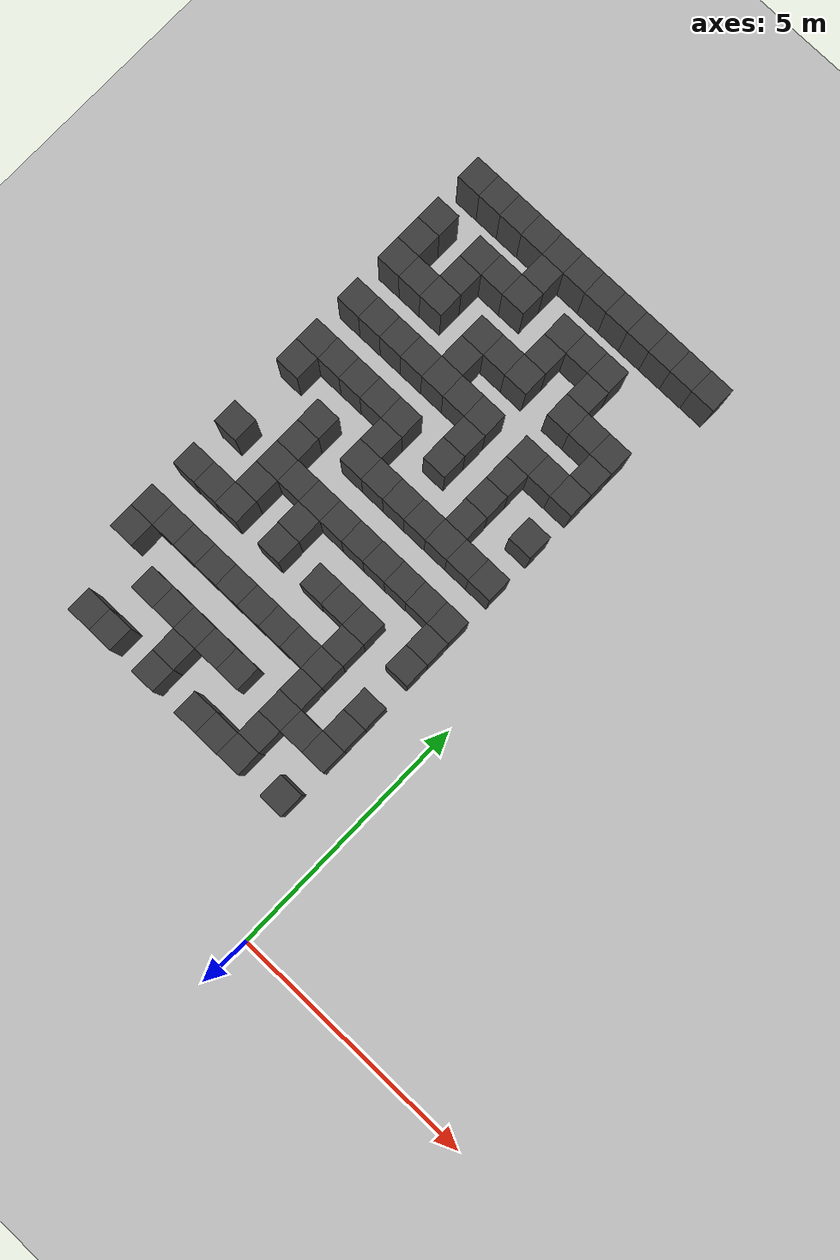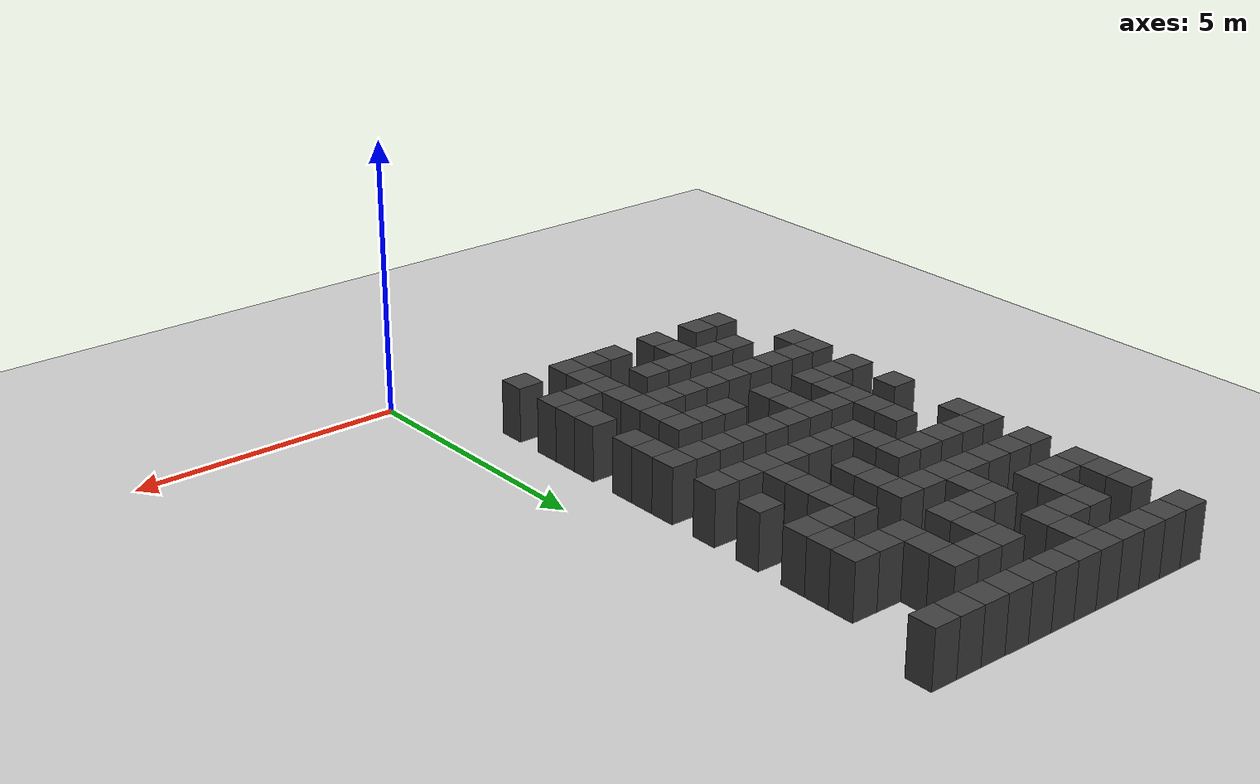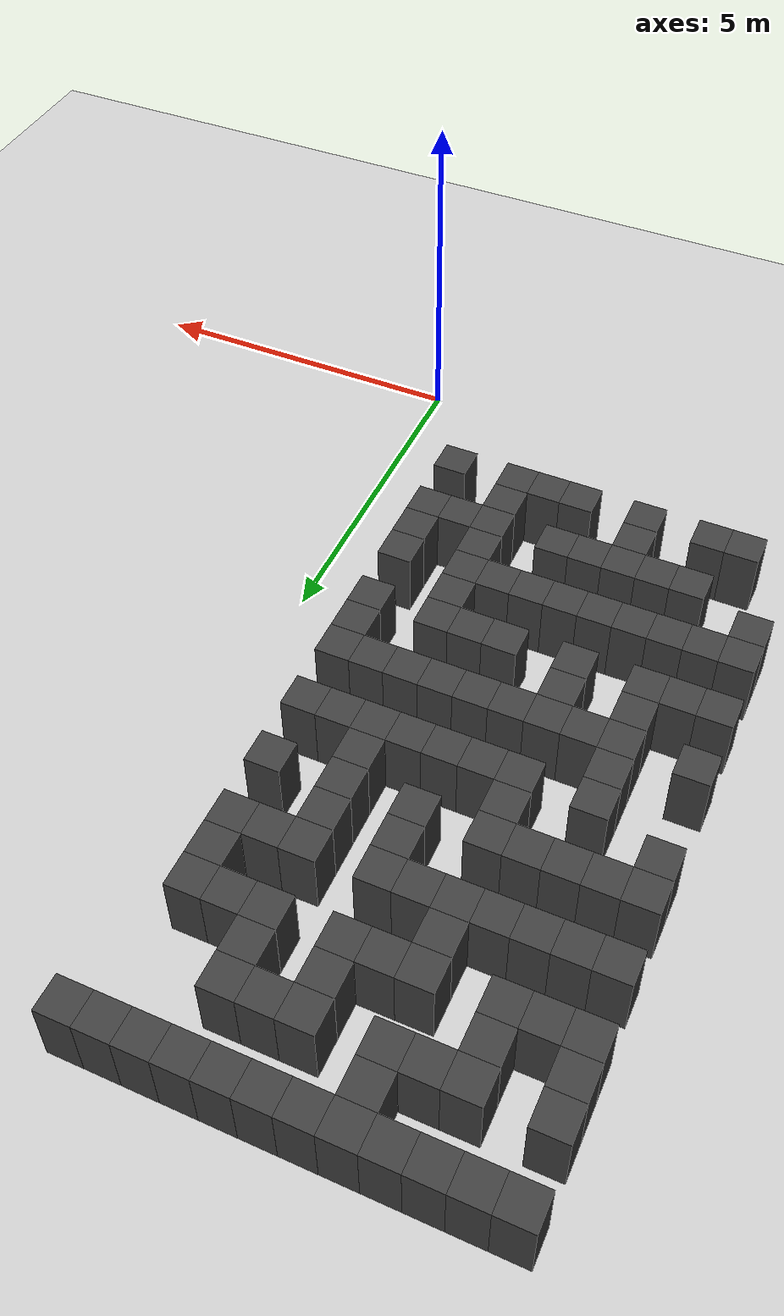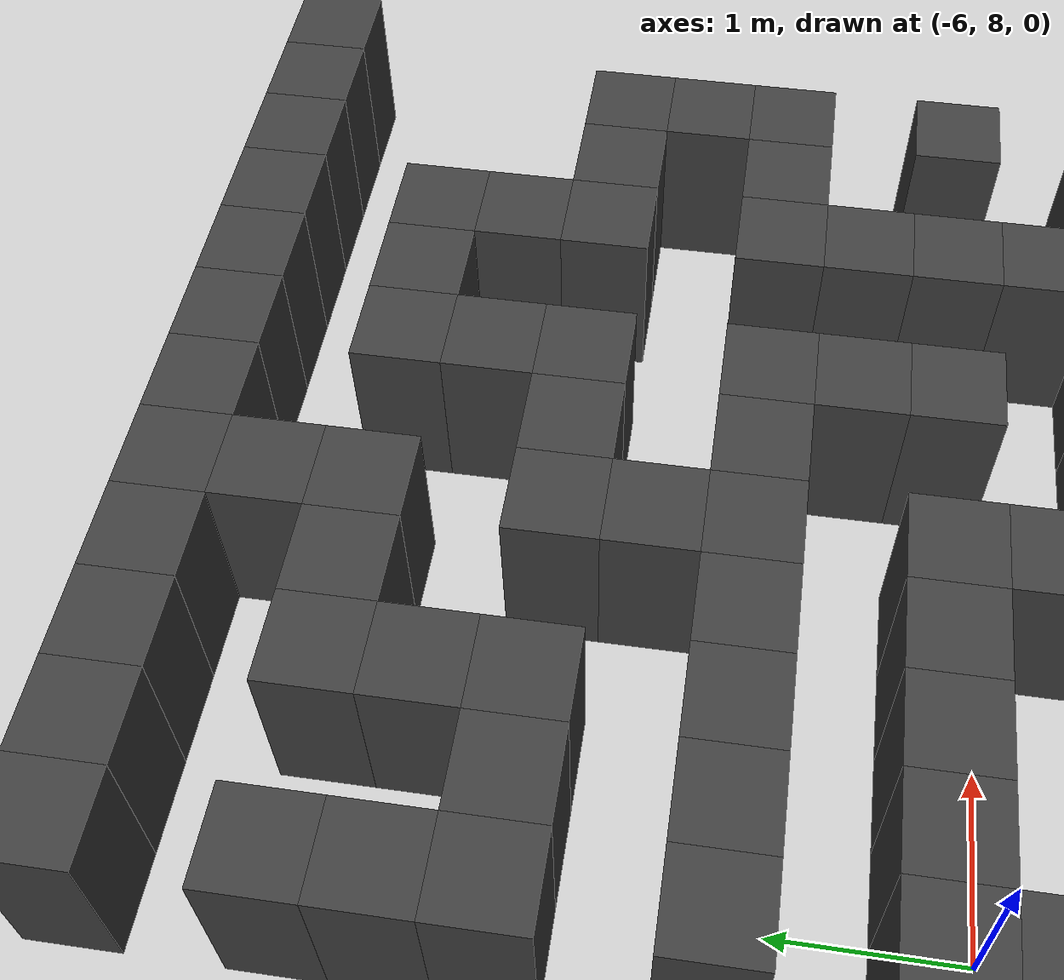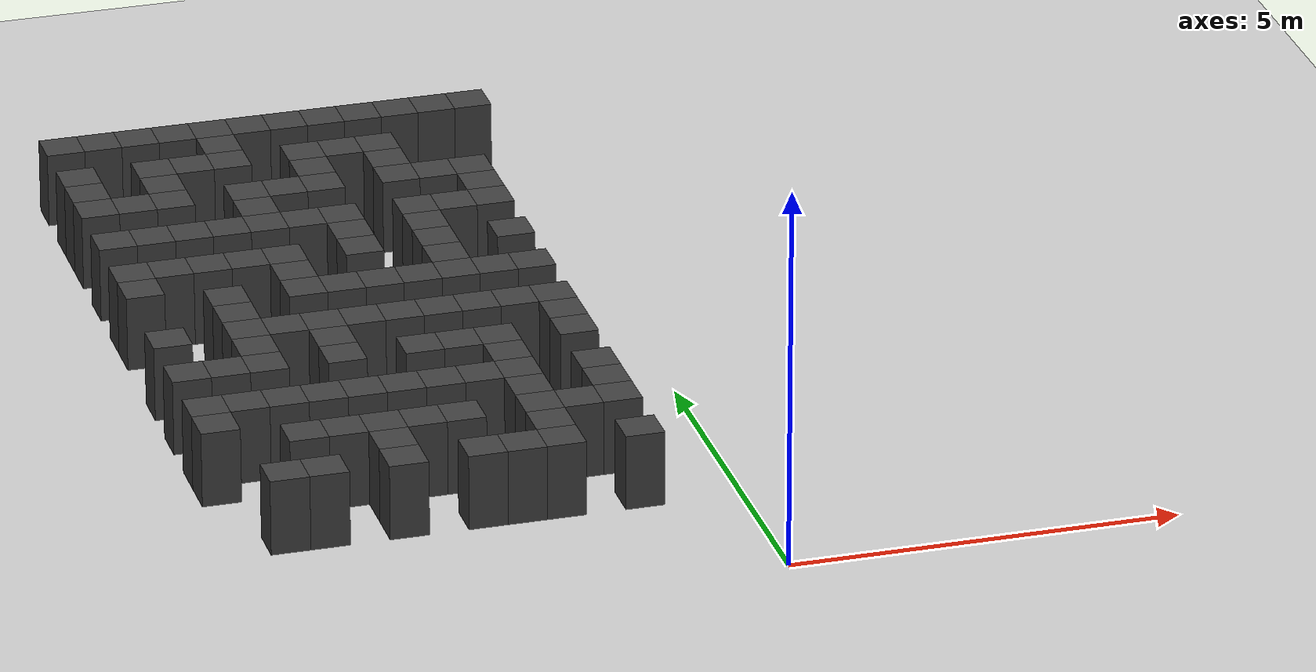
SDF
<sdf version="1.7">
 <world name="map_18814">
  <model name="ground_plane">
   <static>true</static>
   <link name="link">
    <collision name="collision">
     <geometry><plane><normal>0 0 1</normal><size>200 200</size></plane></geometry>
    </collision>
    <visual name="visual">
     <geometry><plane><normal>0 0 1</normal><size>200 200</size></plane></geometry>
     <material><ambient>0.8 0.8 0.8 1</ambient><diffuse>0.8 0.8 0.8 1</diffuse></material>
    </visual>
   </link>
  </model>
  <model name="maze_environment">
   <static>true</static>
   <link name="wall_12">
    <pose>-6.250 12.250 0.500 0 0 0</pose>
    <collision name="col"><geometry><box><size>0.5 0.5 1.0</size></box></geometry></collision>
    <visual name="vis">
     <geometry><box><size>0.5 0.5 1.0</size></box></geometry>
     <material><ambient>0.15 0.15 0.15 1</ambient><diffuse>0.25 0.25 0.25 1</diffuse></material>
    </visual>
   </link>
   <link name="wall_13">
    <pose>-5.750 12.250 0.500 0 0 0</pose>
    <collision name="col"><geometry><box><size>0.5 0.5 1.0</size></box></geometry></collision>
    <visual name="vis">
     <geometry><box><size>0.5 0.5 1.0</size></box></geometry>
     <material><ambient>0.15 0.15 0.15 1</ambient><diffuse>0.25 0.25 0.25 1</diffuse></material>
    </visual>
   </link>
   <link name="wall_14">
    <pose>-5.250 12.250 0.500 0 0 0</pose>
    <collision name="col"><geometry><box><size>0.5 0.5 1.0</size></box></geometry></collision>
    <visual name="vis">
     <geometry><box><size>0.5 0.5 1.0</size></box></geometry>
     <material><ambient>0.15 0.15 0.15 1</ambient><diffuse>0.25 0.25 0.25 1</diffuse></material>
    </visual>
   </link>
   <link name="wall_15">
    <pose>-4.750 12.250 0.500 0 0 0</pose>
    <collision name="col"><geometry><box><size>0.5 0.5 1.0</size></box></geometry></collision>
    <visual name="vis">
     <geometry><box><size>0.5 0.5 1.0</size></box></geometry>
     <material><ambient>0.15 0.15 0.15 1</ambient><diffuse>0.25 0.25 0.25 1</diffuse></material>
    </visual>
   </link>
   <link name="wall_16">
    <pose>-4.250 12.250 0.500 0 0 0</pose>
    <collision name="col"><geometry><box><size>0.5 0.5 1.0</size></box></geometry></collision>
    <visual name="vis">
     <geometry><box><size>0.5 0.5 1.0</size></box></geometry>
     <material><ambient>0.15 0.15 0.15 1</ambient><diffuse>0.25 0.25 0.25 1</diffuse></material>
    </visual>
   </link>
   <link name="wall_17">
    <pose>-3.750 12.250 0.500 0 0 0</pose>
    <collision name="col"><geometry><box><size>0.5 0.5 1.0</size></box></geometry></collision>
    <visual name="vis">
     <geometry><box><size>0.5 0.5 1.0</size></box></geometry>
     <material><ambient>0.15 0.15 0.15 1</ambient><diffuse>0.25 0.25 0.25 1</diffuse></material>
    </visual>
   </link>
   <link name="wall_18">
    <pose>-3.250 12.250 0.500 0 0 0</pose>
    <collision name="col"><geometry><box><size>0.5 0.5 1.0</size></box></geometry></collision>
    <visual name="vis">
     <geometry><box><size>0.5 0.5 1.0</size></box></geometry>
     <material><ambient>0.15 0.15 0.15 1</ambient><diffuse>0.25 0.25 0.25 1</diffuse></material>
    </visual>
   </link>
   <link name="wall_19">
    <pose>-2.750 12.250 0.500 0 0 0</pose>
    <collision name="col"><geometry><box><size>0.5 0.5 1.0</size></box></geometry></collision>
    <visual name="vis">
     <geometry><box><size>0.5 0.5 1.0</size></box></geometry>
     <material><ambient>0.15 0.15 0.15 1</ambient><diffuse>0.25 0.25 0.25 1</diffuse></material>
    </visual>
   </link>
   <link name="wall_20">
    <pose>-2.250 12.250 0.500 0 0 0</pose>
    <collision name="col"><geometry><box><size>0.5 0.5 1.0</size></box></geometry></collision>
    <visual name="vis">
     <geometry><box><size>0.5 0.5 1.0</size></box></geometry>
     <material><ambient>0.15 0.15 0.15 1</ambient><diffuse>0.25 0.25 0.25 1</diffuse></material>
    </visual>
   </link>
   <link name="wall_21">
    <pose>-1.750 12.250 0.500 0 0 0</pose>
    <collision name="col"><geometry><box><size>0.5 0.5 1.0</size></box></geometry></collision>
    <visual name="vis">
     <geometry><box><size>0.5 0.5 1.0</size></box></geometry>
     <material><ambient>0.15 0.15 0.15 1</ambient><diffuse>0.25 0.25 0.25 1</diffuse></material>
    </visual>
   </link>
   <link name="wall_22">
    <pose>-1.250 12.250 0.500 0 0 0</pose>
    <collision name="col"><geometry><box><size>0.5 0.5 1.0</size></box></geometry></collision>
    <visual name="vis">
     <geometry><box><size>0.5 0.5 1.0</size></box></geometry>
     <material><ambient>0.15 0.15 0.15 1</ambient><diffuse>0.25 0.25 0.25 1</diffuse></material>
    </visual>
   </link>
   <link name="wall_23">
    <pose>-0.750 12.250 0.500 0 0 0</pose>
    <collision name="col"><geometry><box><size>0.5 0.5 1.0</size></box></geometry></collision>
    <visual name="vis">
     <geometry><box><size>0.5 0.5 1.0</size></box></geometry>
     <material><ambient>0.15 0.15 0.15 1</ambient><diffuse>0.25 0.25 0.25 1</diffuse></material>
    </visual>
   </link>
   <link name="wall_53">
    <pose>-4.250 11.750 0.500 0 0 0</pose>
    <collision name="col"><geometry><box><size>0.5 0.5 1.0</size></box></geometry></collision>
    <visual name="vis">
     <geometry><box><size>0.5 0.5 1.0</size></box></geometry>
     <material><ambient>0.15 0.15 0.15 1</ambient><diffuse>0.25 0.25 0.25 1</diffuse></material>
    </visual>
   </link>
   <link name="wall_65">
    <pose>-6.250 11.250 0.500 0 0 0</pose>
    <collision name="col"><geometry><box><size>0.5 0.5 1.0</size></box></geometry></collision>
    <visual name="vis">
     <geometry><box><size>0.5 0.5 1.0</size></box></geometry>
     <material><ambient>0.15 0.15 0.15 1</ambient><diffuse>0.25 0.25 0.25 1</diffuse></material>
    </visual>
   </link>
   <link name="wall_66">
    <pose>-5.250 11.250 0.500 0 0 0</pose>
    <collision name="col"><geometry><box><size>0.5 0.5 1.0</size></box></geometry></collision>
    <visual name="vis">
     <geometry><box><size>0.5 0.5 1.0</size></box></geometry>
     <material><ambient>0.15 0.15 0.15 1</ambient><diffuse>0.25 0.25 0.25 1</diffuse></material>
    </visual>
   </link>
   <link name="wall_67">
    <pose>-4.750 11.250 0.500 0 0 0</pose>
    <collision name="col"><geometry><box><size>0.5 0.5 1.0</size></box></geometry></collision>
    <visual name="vis">
     <geometry><box><size>0.5 0.5 1.0</size></box></geometry>
     <material><ambient>0.15 0.15 0.15 1</ambient><diffuse>0.25 0.25 0.25 1</diffuse></material>
    </visual>
   </link>
   <link name="wall_68">
    <pose>-4.250 11.250 0.500 0 0 0</pose>
    <collision name="col"><geometry><box><size>0.5 0.5 1.0</size></box></geometry></collision>
    <visual name="vis">
     <geometry><box><size>0.5 0.5 1.0</size></box></geometry>
     <material><ambient>0.15 0.15 0.15 1</ambient><diffuse>0.25 0.25 0.25 1</diffuse></material>
    </visual>
   </link>
   <link name="wall_69">
    <pose>-3.250 11.250 0.500 0 0 0</pose>
    <collision name="col"><geometry><box><size>0.5 0.5 1.0</size></box></geometry></collision>
    <visual name="vis">
     <geometry><box><size>0.5 0.5 1.0</size></box></geometry>
     <material><ambient>0.15 0.15 0.15 1</ambient><diffuse>0.25 0.25 0.25 1</diffuse></material>
    </visual>
   </link>
   <link name="wall_70">
    <pose>-2.750 11.250 0.500 0 0 0</pose>
    <collision name="col"><geometry><box><size>0.5 0.5 1.0</size></box></geometry></collision>
    <visual name="vis">
     <geometry><box><size>0.5 0.5 1.0</size></box></geometry>
     <material><ambient>0.15 0.15 0.15 1</ambient><diffuse>0.25 0.25 0.25 1</diffuse></material>
    </visual>
   </link>
   <link name="wall_71">
    <pose>-2.250 11.250 0.500 0 0 0</pose>
    <collision name="col"><geometry><box><size>0.5 0.5 1.0</size></box></geometry></collision>
    <visual name="vis">
     <geometry><box><size>0.5 0.5 1.0</size></box></geometry>
     <material><ambient>0.15 0.15 0.15 1</ambient><diffuse>0.25 0.25 0.25 1</diffuse></material>
    </visual>
   </link>
   <link name="wall_98">
    <pose>-6.250 10.750 0.500 0 0 0</pose>
    <collision name="col"><geometry><box><size>0.5 0.5 1.0</size></box></geometry></collision>
    <visual name="vis">
     <geometry><box><size>0.5 0.5 1.0</size></box></geometry>
     <material><ambient>0.15 0.15 0.15 1</ambient><diffuse>0.25 0.25 0.25 1</diffuse></material>
    </visual>
   </link>
   <link name="wall_99">
    <pose>-5.250 10.750 0.500 0 0 0</pose>
    <collision name="col"><geometry><box><size>0.5 0.5 1.0</size></box></geometry></collision>
    <visual name="vis">
     <geometry><box><size>0.5 0.5 1.0</size></box></geometry>
     <material><ambient>0.15 0.15 0.15 1</ambient><diffuse>0.25 0.25 0.25 1</diffuse></material>
    </visual>
   </link>
   <link name="wall_100">
    <pose>-3.250 10.750 0.500 0 0 0</pose>
    <collision name="col"><geometry><box><size>0.5 0.5 1.0</size></box></geometry></collision>
    <visual name="vis">
     <geometry><box><size>0.5 0.5 1.0</size></box></geometry>
     <material><ambient>0.15 0.15 0.15 1</ambient><diffuse>0.25 0.25 0.25 1</diffuse></material>
    </visual>
   </link>
   <link name="wall_101">
    <pose>-2.250 10.750 0.500 0 0 0</pose>
    <collision name="col"><geometry><box><size>0.5 0.5 1.0</size></box></geometry></collision>
    <visual name="vis">
     <geometry><box><size>0.5 0.5 1.0</size></box></geometry>
     <material><ambient>0.15 0.15 0.15 1</ambient><diffuse>0.25 0.25 0.25 1</diffuse></material>
    </visual>
   </link>
   <link name="wall_118">
    <pose>-6.250 10.250 0.500 0 0 0</pose>
    <collision name="col"><geometry><box><size>0.5 0.5 1.0</size></box></geometry></collision>
    <visual name="vis">
     <geometry><box><size>0.5 0.5 1.0</size></box></geometry>
     <material><ambient>0.15 0.15 0.15 1</ambient><diffuse>0.25 0.25 0.25 1</diffuse></material>
    </visual>
   </link>
   <link name="wall_119">
    <pose>-5.750 10.250 0.500 0 0 0</pose>
    <collision name="col"><geometry><box><size>0.5 0.5 1.0</size></box></geometry></collision>
    <visual name="vis">
     <geometry><box><size>0.5 0.5 1.0</size></box></geometry>
     <material><ambient>0.15 0.15 0.15 1</ambient><diffuse>0.25 0.25 0.25 1</diffuse></material>
    </visual>
   </link>
   <link name="wall_120">
    <pose>-5.250 10.250 0.500 0 0 0</pose>
    <collision name="col"><geometry><box><size>0.5 0.5 1.0</size></box></geometry></collision>
    <visual name="vis">
     <geometry><box><size>0.5 0.5 1.0</size></box></geometry>
     <material><ambient>0.15 0.15 0.15 1</ambient><diffuse>0.25 0.25 0.25 1</diffuse></material>
    </visual>
   </link>
   <link name="wall_121">
    <pose>-4.250 10.250 0.500 0 0 0</pose>
    <collision name="col"><geometry><box><size>0.5 0.5 1.0</size></box></geometry></collision>
    <visual name="vis">
     <geometry><box><size>0.5 0.5 1.0</size></box></geometry>
     <material><ambient>0.15 0.15 0.15 1</ambient><diffuse>0.25 0.25 0.25 1</diffuse></material>
    </visual>
   </link>
   <link name="wall_122">
    <pose>-3.750 10.250 0.500 0 0 0</pose>
    <collision name="col"><geometry><box><size>0.5 0.5 1.0</size></box></geometry></collision>
    <visual name="vis">
     <geometry><box><size>0.5 0.5 1.0</size></box></geometry>
     <material><ambient>0.15 0.15 0.15 1</ambient><diffuse>0.25 0.25 0.25 1</diffuse></material>
    </visual>
   </link>
   <link name="wall_123">
    <pose>-3.250 10.250 0.500 0 0 0</pose>
    <collision name="col"><geometry><box><size>0.5 0.5 1.0</size></box></geometry></collision>
    <visual name="vis">
     <geometry><box><size>0.5 0.5 1.0</size></box></geometry>
     <material><ambient>0.15 0.15 0.15 1</ambient><diffuse>0.25 0.25 0.25 1</diffuse></material>
    </visual>
   </link>
   <link name="wall_124">
    <pose>-2.250 10.250 0.500 0 0 0</pose>
    <collision name="col"><geometry><box><size>0.5 0.5 1.0</size></box></geometry></collision>
    <visual name="vis">
     <geometry><box><size>0.5 0.5 1.0</size></box></geometry>
     <material><ambient>0.15 0.15 0.15 1</ambient><diffuse>0.25 0.25 0.25 1</diffuse></material>
    </visual>
   </link>
   <link name="wall_125">
    <pose>-1.750 10.250 0.500 0 0 0</pose>
    <collision name="col"><geometry><box><size>0.5 0.5 1.0</size></box></geometry></collision>
    <visual name="vis">
     <geometry><box><size>0.5 0.5 1.0</size></box></geometry>
     <material><ambient>0.15 0.15 0.15 1</ambient><diffuse>0.25 0.25 0.25 1</diffuse></material>
    </visual>
   </link>
   <link name="wall_126">
    <pose>-1.250 10.250 0.500 0 0 0</pose>
    <collision name="col"><geometry><box><size>0.5 0.5 1.0</size></box></geometry></collision>
    <visual name="vis">
     <geometry><box><size>0.5 0.5 1.0</size></box></geometry>
     <material><ambient>0.15 0.15 0.15 1</ambient><diffuse>0.25 0.25 0.25 1</diffuse></material>
    </visual>
   </link>
   <link name="wall_152">
    <pose>-4.250 9.750 0.500 0 0 0</pose>
    <collision name="col"><geometry><box><size>0.5 0.5 1.0</size></box></geometry></collision>
    <visual name="vis">
     <geometry><box><size>0.5 0.5 1.0</size></box></geometry>
     <material><ambient>0.15 0.15 0.15 1</ambient><diffuse>0.25 0.25 0.25 1</diffuse></material>
    </visual>
   </link>
   <link name="wall_153">
    <pose>-1.250 9.750 0.500 0 0 0</pose>
    <collision name="col"><geometry><box><size>0.5 0.5 1.0</size></box></geometry></collision>
    <visual name="vis">
     <geometry><box><size>0.5 0.5 1.0</size></box></geometry>
     <material><ambient>0.15 0.15 0.15 1</ambient><diffuse>0.25 0.25 0.25 1</diffuse></material>
    </visual>
   </link>
   <link name="wall_168">
    <pose>-6.250 9.250 0.500 0 0 0</pose>
    <collision name="col"><geometry><box><size>0.5 0.5 1.0</size></box></geometry></collision>
    <visual name="vis">
     <geometry><box><size>0.5 0.5 1.0</size></box></geometry>
     <material><ambient>0.15 0.15 0.15 1</ambient><diffuse>0.25 0.25 0.25 1</diffuse></material>
    </visual>
   </link>
   <link name="wall_169">
    <pose>-5.750 9.250 0.500 0 0 0</pose>
    <collision name="col"><geometry><box><size>0.5 0.5 1.0</size></box></geometry></collision>
    <visual name="vis">
     <geometry><box><size>0.5 0.5 1.0</size></box></geometry>
     <material><ambient>0.15 0.15 0.15 1</ambient><diffuse>0.25 0.25 0.25 1</diffuse></material>
    </visual>
   </link>
   <link name="wall_170">
    <pose>-5.250 9.250 0.500 0 0 0</pose>
    <collision name="col"><geometry><box><size>0.5 0.5 1.0</size></box></geometry></collision>
    <visual name="vis">
     <geometry><box><size>0.5 0.5 1.0</size></box></geometry>
     <material><ambient>0.15 0.15 0.15 1</ambient><diffuse>0.25 0.25 0.25 1</diffuse></material>
    </visual>
   </link>
   <link name="wall_171">
    <pose>-4.750 9.250 0.500 0 0 0</pose>
    <collision name="col"><geometry><box><size>0.5 0.5 1.0</size></box></geometry></collision>
    <visual name="vis">
     <geometry><box><size>0.5 0.5 1.0</size></box></geometry>
     <material><ambient>0.15 0.15 0.15 1</ambient><diffuse>0.25 0.25 0.25 1</diffuse></material>
    </visual>
   </link>
   <link name="wall_172">
    <pose>-4.250 9.250 0.500 0 0 0</pose>
    <collision name="col"><geometry><box><size>0.5 0.5 1.0</size></box></geometry></collision>
    <visual name="vis">
     <geometry><box><size>0.5 0.5 1.0</size></box></geometry>
     <material><ambient>0.15 0.15 0.15 1</ambient><diffuse>0.25 0.25 0.25 1</diffuse></material>
    </visual>
   </link>
   <link name="wall_173">
    <pose>-3.750 9.250 0.500 0 0 0</pose>
    <collision name="col"><geometry><box><size>0.5 0.5 1.0</size></box></geometry></collision>
    <visual name="vis">
     <geometry><box><size>0.5 0.5 1.0</size></box></geometry>
     <material><ambient>0.15 0.15 0.15 1</ambient><diffuse>0.25 0.25 0.25 1</diffuse></material>
    </visual>
   </link>
   <link name="wall_174">
    <pose>-3.250 9.250 0.500 0 0 0</pose>
    <collision name="col"><geometry><box><size>0.5 0.5 1.0</size></box></geometry></collision>
    <visual name="vis">
     <geometry><box><size>0.5 0.5 1.0</size></box></geometry>
     <material><ambient>0.15 0.15 0.15 1</ambient><diffuse>0.25 0.25 0.25 1</diffuse></material>
    </visual>
   </link>
   <link name="wall_175">
    <pose>-2.250 9.250 0.500 0 0 0</pose>
    <collision name="col"><geometry><box><size>0.5 0.5 1.0</size></box></geometry></collision>
    <visual name="vis">
     <geometry><box><size>0.5 0.5 1.0</size></box></geometry>
     <material><ambient>0.15 0.15 0.15 1</ambient><diffuse>0.25 0.25 0.25 1</diffuse></material>
    </visual>
   </link>
   <link name="wall_176">
    <pose>-1.750 9.250 0.500 0 0 0</pose>
    <collision name="col"><geometry><box><size>0.5 0.5 1.0</size></box></geometry></collision>
    <visual name="vis">
     <geometry><box><size>0.5 0.5 1.0</size></box></geometry>
     <material><ambient>0.15 0.15 0.15 1</ambient><diffuse>0.25 0.25 0.25 1</diffuse></material>
    </visual>
   </link>
   <link name="wall_177">
    <pose>-1.250 9.250 0.500 0 0 0</pose>
    <collision name="col"><geometry><box><size>0.5 0.5 1.0</size></box></geometry></collision>
    <visual name="vis">
     <geometry><box><size>0.5 0.5 1.0</size></box></geometry>
     <material><ambient>0.15 0.15 0.15 1</ambient><diffuse>0.25 0.25 0.25 1</diffuse></material>
    </visual>
   </link>
   <link name="wall_202">
    <pose>-3.250 8.750 0.500 0 0 0</pose>
    <collision name="col"><geometry><box><size>0.5 0.5 1.0</size></box></geometry></collision>
    <visual name="vis">
     <geometry><box><size>0.5 0.5 1.0</size></box></geometry>
     <material><ambient>0.15 0.15 0.15 1</ambient><diffuse>0.25 0.25 0.25 1</diffuse></material>
    </visual>
   </link>
   <link name="wall_203">
    <pose>-2.250 8.750 0.500 0 0 0</pose>
    <collision name="col"><geometry><box><size>0.5 0.5 1.0</size></box></geometry></collision>
    <visual name="vis">
     <geometry><box><size>0.5 0.5 1.0</size></box></geometry>
     <material><ambient>0.15 0.15 0.15 1</ambient><diffuse>0.25 0.25 0.25 1</diffuse></material>
    </visual>
   </link>
   <link name="wall_219">
    <pose>-6.250 8.250 0.500 0 0 0</pose>
    <collision name="col"><geometry><box><size>0.5 0.5 1.0</size></box></geometry></collision>
    <visual name="vis">
     <geometry><box><size>0.5 0.5 1.0</size></box></geometry>
     <material><ambient>0.15 0.15 0.15 1</ambient><diffuse>0.25 0.25 0.25 1</diffuse></material>
    </visual>
   </link>
   <link name="wall_220">
    <pose>-5.750 8.250 0.500 0 0 0</pose>
    <collision name="col"><geometry><box><size>0.5 0.5 1.0</size></box></geometry></collision>
    <visual name="vis">
     <geometry><box><size>0.5 0.5 1.0</size></box></geometry>
     <material><ambient>0.15 0.15 0.15 1</ambient><diffuse>0.25 0.25 0.25 1</diffuse></material>
    </visual>
   </link>
   <link name="wall_221">
    <pose>-5.250 8.250 0.500 0 0 0</pose>
    <collision name="col"><geometry><box><size>0.5 0.5 1.0</size></box></geometry></collision>
    <visual name="vis">
     <geometry><box><size>0.5 0.5 1.0</size></box></geometry>
     <material><ambient>0.15 0.15 0.15 1</ambient><diffuse>0.25 0.25 0.25 1</diffuse></material>
    </visual>
   </link>
   <link name="wall_222">
    <pose>-4.750 8.250 0.500 0 0 0</pose>
    <collision name="col"><geometry><box><size>0.5 0.5 1.0</size></box></geometry></collision>
    <visual name="vis">
     <geometry><box><size>0.5 0.5 1.0</size></box></geometry>
     <material><ambient>0.15 0.15 0.15 1</ambient><diffuse>0.25 0.25 0.25 1</diffuse></material>
    </visual>
   </link>
   <link name="wall_223">
    <pose>-4.250 8.250 0.500 0 0 0</pose>
    <collision name="col"><geometry><box><size>0.5 0.5 1.0</size></box></geometry></collision>
    <visual name="vis">
     <geometry><box><size>0.5 0.5 1.0</size></box></geometry>
     <material><ambient>0.15 0.15 0.15 1</ambient><diffuse>0.25 0.25 0.25 1</diffuse></material>
    </visual>
   </link>
   <link name="wall_224">
    <pose>-3.250 8.250 0.500 0 0 0</pose>
    <collision name="col"><geometry><box><size>0.5 0.5 1.0</size></box></geometry></collision>
    <visual name="vis">
     <geometry><box><size>0.5 0.5 1.0</size></box></geometry>
     <material><ambient>0.15 0.15 0.15 1</ambient><diffuse>0.25 0.25 0.25 1</diffuse></material>
    </visual>
   </link>
   <link name="wall_225">
    <pose>-2.250 8.250 0.500 0 0 0</pose>
    <collision name="col"><geometry><box><size>0.5 0.5 1.0</size></box></geometry></collision>
    <visual name="vis">
     <geometry><box><size>0.5 0.5 1.0</size></box></geometry>
     <material><ambient>0.15 0.15 0.15 1</ambient><diffuse>0.25 0.25 0.25 1</diffuse></material>
    </visual>
   </link>
   <link name="wall_226">
    <pose>-1.250 8.250 0.500 0 0 0</pose>
    <collision name="col"><geometry><box><size>0.5 0.5 1.0</size></box></geometry></collision>
    <visual name="vis">
     <geometry><box><size>0.5 0.5 1.0</size></box></geometry>
     <material><ambient>0.15 0.15 0.15 1</ambient><diffuse>0.25 0.25 0.25 1</diffuse></material>
    </visual>
   </link>
   <link name="wall_250">
    <pose>-6.250 7.750 0.500 0 0 0</pose>
    <collision name="col"><geometry><box><size>0.5 0.5 1.0</size></box></geometry></collision>
    <visual name="vis">
     <geometry><box><size>0.5 0.5 1.0</size></box></geometry>
     <material><ambient>0.15 0.15 0.15 1</ambient><diffuse>0.25 0.25 0.25 1</diffuse></material>
    </visual>
   </link>
   <link name="wall_251">
    <pose>-4.250 7.750 0.500 0 0 0</pose>
    <collision name="col"><geometry><box><size>0.5 0.5 1.0</size></box></geometry></collision>
    <visual name="vis">
     <geometry><box><size>0.5 0.5 1.0</size></box></geometry>
     <material><ambient>0.15 0.15 0.15 1</ambient><diffuse>0.25 0.25 0.25 1</diffuse></material>
    </visual>
   </link>
   <link name="wall_252">
    <pose>-2.250 7.750 0.500 0 0 0</pose>
    <collision name="col"><geometry><box><size>0.5 0.5 1.0</size></box></geometry></collision>
    <visual name="vis">
     <geometry><box><size>0.5 0.5 1.0</size></box></geometry>
     <material><ambient>0.15 0.15 0.15 1</ambient><diffuse>0.25 0.25 0.25 1</diffuse></material>
    </visual>
   </link>
   <link name="wall_267">
    <pose>-5.250 7.250 0.500 0 0 0</pose>
    <collision name="col"><geometry><box><size>0.5 0.5 1.0</size></box></geometry></collision>
    <visual name="vis">
     <geometry><box><size>0.5 0.5 1.0</size></box></geometry>
     <material><ambient>0.15 0.15 0.15 1</ambient><diffuse>0.25 0.25 0.25 1</diffuse></material>
    </visual>
   </link>
   <link name="wall_268">
    <pose>-4.250 7.250 0.500 0 0 0</pose>
    <collision name="col"><geometry><box><size>0.5 0.5 1.0</size></box></geometry></collision>
    <visual name="vis">
     <geometry><box><size>0.5 0.5 1.0</size></box></geometry>
     <material><ambient>0.15 0.15 0.15 1</ambient><diffuse>0.25 0.25 0.25 1</diffuse></material>
    </visual>
   </link>
   <link name="wall_269">
    <pose>-3.750 7.250 0.500 0 0 0</pose>
    <collision name="col"><geometry><box><size>0.5 0.5 1.0</size></box></geometry></collision>
    <visual name="vis">
     <geometry><box><size>0.5 0.5 1.0</size></box></geometry>
     <material><ambient>0.15 0.15 0.15 1</ambient><diffuse>0.25 0.25 0.25 1</diffuse></material>
    </visual>
   </link>
   <link name="wall_270">
    <pose>-3.250 7.250 0.500 0 0 0</pose>
    <collision name="col"><geometry><box><size>0.5 0.5 1.0</size></box></geometry></collision>
    <visual name="vis">
     <geometry><box><size>0.5 0.5 1.0</size></box></geometry>
     <material><ambient>0.15 0.15 0.15 1</ambient><diffuse>0.25 0.25 0.25 1</diffuse></material>
    </visual>
   </link>
   <link name="wall_271">
    <pose>-2.750 7.250 0.500 0 0 0</pose>
    <collision name="col"><geometry><box><size>0.5 0.5 1.0</size></box></geometry></collision>
    <visual name="vis">
     <geometry><box><size>0.5 0.5 1.0</size></box></geometry>
     <material><ambient>0.15 0.15 0.15 1</ambient><diffuse>0.25 0.25 0.25 1</diffuse></material>
    </visual>
   </link>
   <link name="wall_272">
    <pose>-2.250 7.250 0.500 0 0 0</pose>
    <collision name="col"><geometry><box><size>0.5 0.5 1.0</size></box></geometry></collision>
    <visual name="vis">
     <geometry><box><size>0.5 0.5 1.0</size></box></geometry>
     <material><ambient>0.15 0.15 0.15 1</ambient><diffuse>0.25 0.25 0.25 1</diffuse></material>
    </visual>
   </link>
   <link name="wall_273">
    <pose>-1.750 7.250 0.500 0 0 0</pose>
    <collision name="col"><geometry><box><size>0.5 0.5 1.0</size></box></geometry></collision>
    <visual name="vis">
     <geometry><box><size>0.5 0.5 1.0</size></box></geometry>
     <material><ambient>0.15 0.15 0.15 1</ambient><diffuse>0.25 0.25 0.25 1</diffuse></material>
    </visual>
   </link>
   <link name="wall_274">
    <pose>-1.250 7.250 0.500 0 0 0</pose>
    <collision name="col"><geometry><box><size>0.5 0.5 1.0</size></box></geometry></collision>
    <visual name="vis">
     <geometry><box><size>0.5 0.5 1.0</size></box></geometry>
     <material><ambient>0.15 0.15 0.15 1</ambient><diffuse>0.25 0.25 0.25 1</diffuse></material>
    </visual>
   </link>
   <link name="wall_298">
    <pose>-5.250 6.750 0.500 0 0 0</pose>
    <collision name="col"><geometry><box><size>0.5 0.5 1.0</size></box></geometry></collision>
    <visual name="vis">
     <geometry><box><size>0.5 0.5 1.0</size></box></geometry>
     <material><ambient>0.15 0.15 0.15 1</ambient><diffuse>0.25 0.25 0.25 1</diffuse></material>
    </visual>
   </link>
   <link name="wall_315">
    <pose>-6.250 6.250 0.500 0 0 0</pose>
    <collision name="col"><geometry><box><size>0.5 0.5 1.0</size></box></geometry></collision>
    <visual name="vis">
     <geometry><box><size>0.5 0.5 1.0</size></box></geometry>
     <material><ambient>0.15 0.15 0.15 1</ambient><diffuse>0.25 0.25 0.25 1</diffuse></material>
    </visual>
   </link>
   <link name="wall_316">
    <pose>-5.250 6.250 0.500 0 0 0</pose>
    <collision name="col"><geometry><box><size>0.5 0.5 1.0</size></box></geometry></collision>
    <visual name="vis">
     <geometry><box><size>0.5 0.5 1.0</size></box></geometry>
     <material><ambient>0.15 0.15 0.15 1</ambient><diffuse>0.25 0.25 0.25 1</diffuse></material>
    </visual>
   </link>
   <link name="wall_317">
    <pose>-4.750 6.250 0.500 0 0 0</pose>
    <collision name="col"><geometry><box><size>0.5 0.5 1.0</size></box></geometry></collision>
    <visual name="vis">
     <geometry><box><size>0.5 0.5 1.0</size></box></geometry>
     <material><ambient>0.15 0.15 0.15 1</ambient><diffuse>0.25 0.25 0.25 1</diffuse></material>
    </visual>
   </link>
   <link name="wall_318">
    <pose>-4.250 6.250 0.500 0 0 0</pose>
    <collision name="col"><geometry><box><size>0.5 0.5 1.0</size></box></geometry></collision>
    <visual name="vis">
     <geometry><box><size>0.5 0.5 1.0</size></box></geometry>
     <material><ambient>0.15 0.15 0.15 1</ambient><diffuse>0.25 0.25 0.25 1</diffuse></material>
    </visual>
   </link>
   <link name="wall_319">
    <pose>-3.750 6.250 0.500 0 0 0</pose>
    <collision name="col"><geometry><box><size>0.5 0.5 1.0</size></box></geometry></collision>
    <visual name="vis">
     <geometry><box><size>0.5 0.5 1.0</size></box></geometry>
     <material><ambient>0.15 0.15 0.15 1</ambient><diffuse>0.25 0.25 0.25 1</diffuse></material>
    </visual>
   </link>
   <link name="wall_320">
    <pose>-3.250 6.250 0.500 0 0 0</pose>
    <collision name="col"><geometry><box><size>0.5 0.5 1.0</size></box></geometry></collision>
    <visual name="vis">
     <geometry><box><size>0.5 0.5 1.0</size></box></geometry>
     <material><ambient>0.15 0.15 0.15 1</ambient><diffuse>0.25 0.25 0.25 1</diffuse></material>
    </visual>
   </link>
   <link name="wall_321">
    <pose>-2.750 6.250 0.500 0 0 0</pose>
    <collision name="col"><geometry><box><size>0.5 0.5 1.0</size></box></geometry></collision>
    <visual name="vis">
     <geometry><box><size>0.5 0.5 1.0</size></box></geometry>
     <material><ambient>0.15 0.15 0.15 1</ambient><diffuse>0.25 0.25 0.25 1</diffuse></material>
    </visual>
   </link>
   <link name="wall_322">
    <pose>-2.250 6.250 0.500 0 0 0</pose>
    <collision name="col"><geometry><box><size>0.5 0.5 1.0</size></box></geometry></collision>
    <visual name="vis">
     <geometry><box><size>0.5 0.5 1.0</size></box></geometry>
     <material><ambient>0.15 0.15 0.15 1</ambient><diffuse>0.25 0.25 0.25 1</diffuse></material>
    </visual>
   </link>
   <link name="wall_323">
    <pose>-1.750 6.250 0.500 0 0 0</pose>
    <collision name="col"><geometry><box><size>0.5 0.5 1.0</size></box></geometry></collision>
    <visual name="vis">
     <geometry><box><size>0.5 0.5 1.0</size></box></geometry>
     <material><ambient>0.15 0.15 0.15 1</ambient><diffuse>0.25 0.25 0.25 1</diffuse></material>
    </visual>
   </link>
   <link name="wall_324">
    <pose>-1.250 6.250 0.500 0 0 0</pose>
    <collision name="col"><geometry><box><size>0.5 0.5 1.0</size></box></geometry></collision>
    <visual name="vis">
     <geometry><box><size>0.5 0.5 1.0</size></box></geometry>
     <material><ambient>0.15 0.15 0.15 1</ambient><diffuse>0.25 0.25 0.25 1</diffuse></material>
    </visual>
   </link>
   <link name="wall_348">
    <pose>-5.250 5.750 0.500 0 0 0</pose>
    <collision name="col"><geometry><box><size>0.5 0.5 1.0</size></box></geometry></collision>
    <visual name="vis">
     <geometry><box><size>0.5 0.5 1.0</size></box></geometry>
     <material><ambient>0.15 0.15 0.15 1</ambient><diffuse>0.25 0.25 0.25 1</diffuse></material>
    </visual>
   </link>
   <link name="wall_349">
    <pose>-4.250 5.750 0.500 0 0 0</pose>
    <collision name="col"><geometry><box><size>0.5 0.5 1.0</size></box></geometry></collision>
    <visual name="vis">
     <geometry><box><size>0.5 0.5 1.0</size></box></geometry>
     <material><ambient>0.15 0.15 0.15 1</ambient><diffuse>0.25 0.25 0.25 1</diffuse></material>
    </visual>
   </link>
   <link name="wall_350">
    <pose>-1.250 5.750 0.500 0 0 0</pose>
    <collision name="col"><geometry><box><size>0.5 0.5 1.0</size></box></geometry></collision>
    <visual name="vis">
     <geometry><box><size>0.5 0.5 1.0</size></box></geometry>
     <material><ambient>0.15 0.15 0.15 1</ambient><diffuse>0.25 0.25 0.25 1</diffuse></material>
    </visual>
   </link>
   <link name="wall_368">
    <pose>-6.250 5.250 0.500 0 0 0</pose>
    <collision name="col"><geometry><box><size>0.5 0.5 1.0</size></box></geometry></collision>
    <visual name="vis">
     <geometry><box><size>0.5 0.5 1.0</size></box></geometry>
     <material><ambient>0.15 0.15 0.15 1</ambient><diffuse>0.25 0.25 0.25 1</diffuse></material>
    </visual>
   </link>
   <link name="wall_369">
    <pose>-5.750 5.250 0.500 0 0 0</pose>
    <collision name="col"><geometry><box><size>0.5 0.5 1.0</size></box></geometry></collision>
    <visual name="vis">
     <geometry><box><size>0.5 0.5 1.0</size></box></geometry>
     <material><ambient>0.15 0.15 0.15 1</ambient><diffuse>0.25 0.25 0.25 1</diffuse></material>
    </visual>
   </link>
   <link name="wall_370">
    <pose>-5.250 5.250 0.500 0 0 0</pose>
    <collision name="col"><geometry><box><size>0.5 0.5 1.0</size></box></geometry></collision>
    <visual name="vis">
     <geometry><box><size>0.5 0.5 1.0</size></box></geometry>
     <material><ambient>0.15 0.15 0.15 1</ambient><diffuse>0.25 0.25 0.25 1</diffuse></material>
    </visual>
   </link>
   <link name="wall_371">
    <pose>-4.250 5.250 0.500 0 0 0</pose>
    <collision name="col"><geometry><box><size>0.5 0.5 1.0</size></box></geometry></collision>
    <visual name="vis">
     <geometry><box><size>0.5 0.5 1.0</size></box></geometry>
     <material><ambient>0.15 0.15 0.15 1</ambient><diffuse>0.25 0.25 0.25 1</diffuse></material>
    </visual>
   </link>
   <link name="wall_372">
    <pose>-3.250 5.250 0.500 0 0 0</pose>
    <collision name="col"><geometry><box><size>0.5 0.5 1.0</size></box></geometry></collision>
    <visual name="vis">
     <geometry><box><size>0.5 0.5 1.0</size></box></geometry>
     <material><ambient>0.15 0.15 0.15 1</ambient><diffuse>0.25 0.25 0.25 1</diffuse></material>
    </visual>
   </link>
   <link name="wall_373">
    <pose>-2.750 5.250 0.500 0 0 0</pose>
    <collision name="col"><geometry><box><size>0.5 0.5 1.0</size></box></geometry></collision>
    <visual name="vis">
     <geometry><box><size>0.5 0.5 1.0</size></box></geometry>
     <material><ambient>0.15 0.15 0.15 1</ambient><diffuse>0.25 0.25 0.25 1</diffuse></material>
    </visual>
   </link>
   <link name="wall_374">
    <pose>-2.250 5.250 0.500 0 0 0</pose>
    <collision name="col"><geometry><box><size>0.5 0.5 1.0</size></box></geometry></collision>
    <visual name="vis">
     <geometry><box><size>0.5 0.5 1.0</size></box></geometry>
     <material><ambient>0.15 0.15 0.15 1</ambient><diffuse>0.25 0.25 0.25 1</diffuse></material>
    </visual>
   </link>
   <link name="wall_375">
    <pose>-1.250 5.250 0.500 0 0 0</pose>
    <collision name="col"><geometry><box><size>0.5 0.5 1.0</size></box></geometry></collision>
    <visual name="vis">
     <geometry><box><size>0.5 0.5 1.0</size></box></geometry>
     <material><ambient>0.15 0.15 0.15 1</ambient><diffuse>0.25 0.25 0.25 1</diffuse></material>
    </visual>
   </link>
   <link name="wall_400">
    <pose>-2.250 4.750 0.500 0 0 0</pose>
    <collision name="col"><geometry><box><size>0.5 0.5 1.0</size></box></geometry></collision>
    <visual name="vis">
     <geometry><box><size>0.5 0.5 1.0</size></box></geometry>
     <material><ambient>0.15 0.15 0.15 1</ambient><diffuse>0.25 0.25 0.25 1</diffuse></material>
    </visual>
   </link>
   <link name="wall_418">
    <pose>-6.250 4.250 0.500 0 0 0</pose>
    <collision name="col"><geometry><box><size>0.5 0.5 1.0</size></box></geometry></collision>
    <visual name="vis">
     <geometry><box><size>0.5 0.5 1.0</size></box></geometry>
     <material><ambient>0.15 0.15 0.15 1</ambient><diffuse>0.25 0.25 0.25 1</diffuse></material>
    </visual>
   </link>
   <link name="wall_419">
    <pose>-5.750 4.250 0.500 0 0 0</pose>
    <collision name="col"><geometry><box><size>0.5 0.5 1.0</size></box></geometry></collision>
    <visual name="vis">
     <geometry><box><size>0.5 0.5 1.0</size></box></geometry>
     <material><ambient>0.15 0.15 0.15 1</ambient><diffuse>0.25 0.25 0.25 1</diffuse></material>
    </visual>
   </link>
   <link name="wall_420">
    <pose>-5.250 4.250 0.500 0 0 0</pose>
    <collision name="col"><geometry><box><size>0.5 0.5 1.0</size></box></geometry></collision>
    <visual name="vis">
     <geometry><box><size>0.5 0.5 1.0</size></box></geometry>
     <material><ambient>0.15 0.15 0.15 1</ambient><diffuse>0.25 0.25 0.25 1</diffuse></material>
    </visual>
   </link>
   <link name="wall_421">
    <pose>-4.750 4.250 0.500 0 0 0</pose>
    <collision name="col"><geometry><box><size>0.5 0.5 1.0</size></box></geometry></collision>
    <visual name="vis">
     <geometry><box><size>0.5 0.5 1.0</size></box></geometry>
     <material><ambient>0.15 0.15 0.15 1</ambient><diffuse>0.25 0.25 0.25 1</diffuse></material>
    </visual>
   </link>
   <link name="wall_422">
    <pose>-4.250 4.250 0.500 0 0 0</pose>
    <collision name="col"><geometry><box><size>0.5 0.5 1.0</size></box></geometry></collision>
    <visual name="vis">
     <geometry><box><size>0.5 0.5 1.0</size></box></geometry>
     <material><ambient>0.15 0.15 0.15 1</ambient><diffuse>0.25 0.25 0.25 1</diffuse></material>
    </visual>
   </link>
   <link name="wall_423">
    <pose>-3.750 4.250 0.500 0 0 0</pose>
    <collision name="col"><geometry><box><size>0.5 0.5 1.0</size></box></geometry></collision>
    <visual name="vis">
     <geometry><box><size>0.5 0.5 1.0</size></box></geometry>
     <material><ambient>0.15 0.15 0.15 1</ambient><diffuse>0.25 0.25 0.25 1</diffuse></material>
    </visual>
   </link>
   <link name="wall_424">
    <pose>-3.250 4.250 0.500 0 0 0</pose>
    <collision name="col"><geometry><box><size>0.5 0.5 1.0</size></box></geometry></collision>
    <visual name="vis">
     <geometry><box><size>0.5 0.5 1.0</size></box></geometry>
     <material><ambient>0.15 0.15 0.15 1</ambient><diffuse>0.25 0.25 0.25 1</diffuse></material>
    </visual>
   </link>
   <link name="wall_425">
    <pose>-2.750 4.250 0.500 0 0 0</pose>
    <collision name="col"><geometry><box><size>0.5 0.5 1.0</size></box></geometry></collision>
    <visual name="vis">
     <geometry><box><size>0.5 0.5 1.0</size></box></geometry>
     <material><ambient>0.15 0.15 0.15 1</ambient><diffuse>0.25 0.25 0.25 1</diffuse></material>
    </visual>
   </link>
   <link name="wall_426">
    <pose>-2.250 4.250 0.500 0 0 0</pose>
    <collision name="col"><geometry><box><size>0.5 0.5 1.0</size></box></geometry></collision>
    <visual name="vis">
     <geometry><box><size>0.5 0.5 1.0</size></box></geometry>
     <material><ambient>0.15 0.15 0.15 1</ambient><diffuse>0.25 0.25 0.25 1</diffuse></material>
    </visual>
   </link>
   <link name="wall_427">
    <pose>-1.250 4.250 0.500 0 0 0</pose>
    <collision name="col"><geometry><box><size>0.5 0.5 1.0</size></box></geometry></collision>
    <visual name="vis">
     <geometry><box><size>0.5 0.5 1.0</size></box></geometry>
     <material><ambient>0.15 0.15 0.15 1</ambient><diffuse>0.25 0.25 0.25 1</diffuse></material>
    </visual>
   </link>
   <link name="wall_449">
    <pose>-6.250 3.750 0.500 0 0 0</pose>
    <collision name="col"><geometry><box><size>0.5 0.5 1.0</size></box></geometry></collision>
    <visual name="vis">
     <geometry><box><size>0.5 0.5 1.0</size></box></geometry>
     <material><ambient>0.15 0.15 0.15 1</ambient><diffuse>0.25 0.25 0.25 1</diffuse></material>
    </visual>
   </link>
   <link name="wall_450">
    <pose>-2.250 3.750 0.500 0 0 0</pose>
    <collision name="col"><geometry><box><size>0.5 0.5 1.0</size></box></geometry></collision>
    <visual name="vis">
     <geometry><box><size>0.5 0.5 1.0</size></box></geometry>
     <material><ambient>0.15 0.15 0.15 1</ambient><diffuse>0.25 0.25 0.25 1</diffuse></material>
    </visual>
   </link>
   <link name="wall_451">
    <pose>-1.250 3.750 0.500 0 0 0</pose>
    <collision name="col"><geometry><box><size>0.5 0.5 1.0</size></box></geometry></collision>
    <visual name="vis">
     <geometry><box><size>0.5 0.5 1.0</size></box></geometry>
     <material><ambient>0.15 0.15 0.15 1</ambient><diffuse>0.25 0.25 0.25 1</diffuse></material>
    </visual>
   </link>
   <link name="wall_470">
    <pose>-5.250 3.250 0.500 0 0 0</pose>
    <collision name="col"><geometry><box><size>0.5 0.5 1.0</size></box></geometry></collision>
    <visual name="vis">
     <geometry><box><size>0.5 0.5 1.0</size></box></geometry>
     <material><ambient>0.15 0.15 0.15 1</ambient><diffuse>0.25 0.25 0.25 1</diffuse></material>
    </visual>
   </link>
   <link name="wall_471">
    <pose>-4.750 3.250 0.500 0 0 0</pose>
    <collision name="col"><geometry><box><size>0.5 0.5 1.0</size></box></geometry></collision>
    <visual name="vis">
     <geometry><box><size>0.5 0.5 1.0</size></box></geometry>
     <material><ambient>0.15 0.15 0.15 1</ambient><diffuse>0.25 0.25 0.25 1</diffuse></material>
    </visual>
   </link>
   <link name="wall_472">
    <pose>-4.250 3.250 0.500 0 0 0</pose>
    <collision name="col"><geometry><box><size>0.5 0.5 1.0</size></box></geometry></collision>
    <visual name="vis">
     <geometry><box><size>0.5 0.5 1.0</size></box></geometry>
     <material><ambient>0.15 0.15 0.15 1</ambient><diffuse>0.25 0.25 0.25 1</diffuse></material>
    </visual>
   </link>
   <link name="wall_473">
    <pose>-3.750 3.250 0.500 0 0 0</pose>
    <collision name="col"><geometry><box><size>0.5 0.5 1.0</size></box></geometry></collision>
    <visual name="vis">
     <geometry><box><size>0.5 0.5 1.0</size></box></geometry>
     <material><ambient>0.15 0.15 0.15 1</ambient><diffuse>0.25 0.25 0.25 1</diffuse></material>
    </visual>
   </link>
   <link name="wall_474">
    <pose>-3.250 3.250 0.500 0 0 0</pose>
    <collision name="col"><geometry><box><size>0.5 0.5 1.0</size></box></geometry></collision>
    <visual name="vis">
     <geometry><box><size>0.5 0.5 1.0</size></box></geometry>
     <material><ambient>0.15 0.15 0.15 1</ambient><diffuse>0.25 0.25 0.25 1</diffuse></material>
    </visual>
   </link>
   <link name="wall_475">
    <pose>-2.250 3.250 0.500 0 0 0</pose>
    <collision name="col"><geometry><box><size>0.5 0.5 1.0</size></box></geometry></collision>
    <visual name="vis">
     <geometry><box><size>0.5 0.5 1.0</size></box></geometry>
     <material><ambient>0.15 0.15 0.15 1</ambient><diffuse>0.25 0.25 0.25 1</diffuse></material>
    </visual>
   </link>
   <link name="wall_476">
    <pose>-1.750 3.250 0.500 0 0 0</pose>
    <collision name="col"><geometry><box><size>0.5 0.5 1.0</size></box></geometry></collision>
    <visual name="vis">
     <geometry><box><size>0.5 0.5 1.0</size></box></geometry>
     <material><ambient>0.15 0.15 0.15 1</ambient><diffuse>0.25 0.25 0.25 1</diffuse></material>
    </visual>
   </link>
   <link name="wall_477">
    <pose>-1.250 3.250 0.500 0 0 0</pose>
    <collision name="col"><geometry><box><size>0.5 0.5 1.0</size></box></geometry></collision>
    <visual name="vis">
     <geometry><box><size>0.5 0.5 1.0</size></box></geometry>
     <material><ambient>0.15 0.15 0.15 1</ambient><diffuse>0.25 0.25 0.25 1</diffuse></material>
    </visual>
   </link>
   <link name="wall_502">
    <pose>-4.250 2.750 0.500 0 0 0</pose>
    <collision name="col"><geometry><box><size>0.5 0.5 1.0</size></box></geometry></collision>
    <visual name="vis">
     <geometry><box><size>0.5 0.5 1.0</size></box></geometry>
     <material><ambient>0.15 0.15 0.15 1</ambient><diffuse>0.25 0.25 0.25 1</diffuse></material>
    </visual>
   </link>
   <link name="wall_503">
    <pose>-2.250 2.750 0.500 0 0 0</pose>
    <collision name="col"><geometry><box><size>0.5 0.5 1.0</size></box></geometry></collision>
    <visual name="vis">
     <geometry><box><size>0.5 0.5 1.0</size></box></geometry>
     <material><ambient>0.15 0.15 0.15 1</ambient><diffuse>0.25 0.25 0.25 1</diffuse></material>
    </visual>
   </link>
   <link name="wall_521">
    <pose>-5.750 2.250 0.500 0 0 0</pose>
    <collision name="col"><geometry><box><size>0.5 0.5 1.0</size></box></geometry></collision>
    <visual name="vis">
     <geometry><box><size>0.5 0.5 1.0</size></box></geometry>
     <material><ambient>0.15 0.15 0.15 1</ambient><diffuse>0.25 0.25 0.25 1</diffuse></material>
    </visual>
   </link>
   <link name="wall_522">
    <pose>-5.250 2.250 0.500 0 0 0</pose>
    <collision name="col"><geometry><box><size>0.5 0.5 1.0</size></box></geometry></collision>
    <visual name="vis">
     <geometry><box><size>0.5 0.5 1.0</size></box></geometry>
     <material><ambient>0.15 0.15 0.15 1</ambient><diffuse>0.25 0.25 0.25 1</diffuse></material>
    </visual>
   </link>
   <link name="wall_523">
    <pose>-4.250 2.250 0.500 0 0 0</pose>
    <collision name="col"><geometry><box><size>0.5 0.5 1.0</size></box></geometry></collision>
    <visual name="vis">
     <geometry><box><size>0.5 0.5 1.0</size></box></geometry>
     <material><ambient>0.15 0.15 0.15 1</ambient><diffuse>0.25 0.25 0.25 1</diffuse></material>
    </visual>
   </link>
   <link name="wall_524">
    <pose>-3.250 2.250 0.500 0 0 0</pose>
    <collision name="col"><geometry><box><size>0.5 0.5 1.0</size></box></geometry></collision>
    <visual name="vis">
     <geometry><box><size>0.5 0.5 1.0</size></box></geometry>
     <material><ambient>0.15 0.15 0.15 1</ambient><diffuse>0.25 0.25 0.25 1</diffuse></material>
    </visual>
   </link>
   <link name="wall_525">
    <pose>-2.750 2.250 0.500 0 0 0</pose>
    <collision name="col"><geometry><box><size>0.5 0.5 1.0</size></box></geometry></collision>
    <visual name="vis">
     <geometry><box><size>0.5 0.5 1.0</size></box></geometry>
     <material><ambient>0.15 0.15 0.15 1</ambient><diffuse>0.25 0.25 0.25 1</diffuse></material>
    </visual>
   </link>
   <link name="wall_526">
    <pose>-2.250 2.250 0.500 0 0 0</pose>
    <collision name="col"><geometry><box><size>0.5 0.5 1.0</size></box></geometry></collision>
    <visual name="vis">
     <geometry><box><size>0.5 0.5 1.0</size></box></geometry>
     <material><ambient>0.15 0.15 0.15 1</ambient><diffuse>0.25 0.25 0.25 1</diffuse></material>
    </visual>
   </link>
   <link name="wall_527">
    <pose>-1.250 2.250 0.500 0 0 0</pose>
    <collision name="col"><geometry><box><size>0.5 0.5 1.0</size></box></geometry></collision>
    <visual name="vis">
     <geometry><box><size>0.5 0.5 1.0</size></box></geometry>
     <material><ambient>0.15 0.15 0.15 1</ambient><diffuse>0.25 0.25 0.25 1</diffuse></material>
    </visual>
   </link>
  </model>
 </world>
</sdf>
